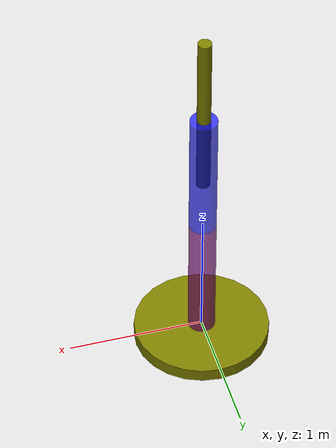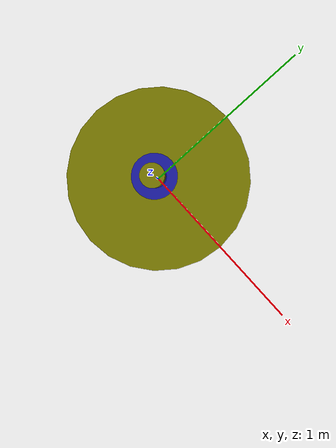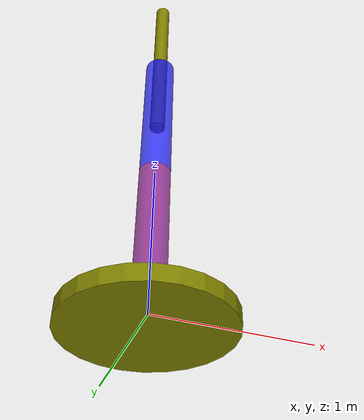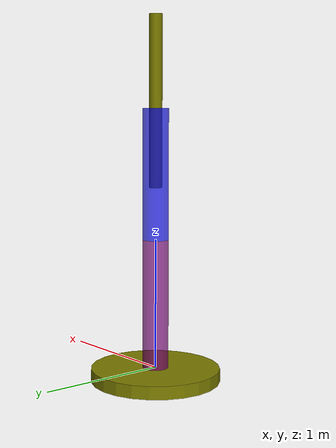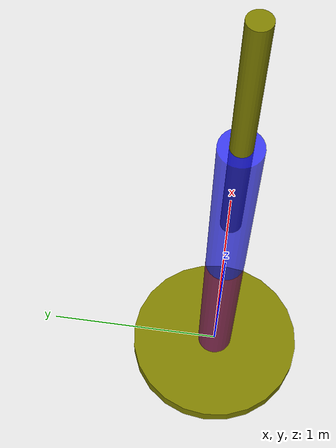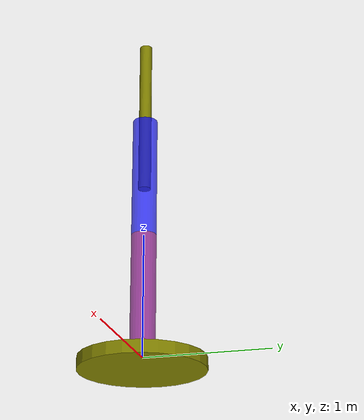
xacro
<?xml version = "1.0"?>
<robot name = "arm" xmlns:xacro="https://www.ros.org/wiki/xacro">
<xacro:include filename = "$(find p1)/xacro/variables.xacro"/>
<link name = "base">
    <visual>
        <geometry>
            <cylinder radius = "${base_R}" length = "${base_L}" />
        </geometry>
        <origin xyz = "0 0 ${-base_L /2}"/>
        <material name = "c1">
            <color rgba = "0.5 0.5 0 1"/>
        </material>
    </visual>
</link>

<link name = "link1">
    <visual>
        <geometry>
            <cylinder radius = "${R1}" length = "${L1}"/>
        </geometry>
        <origin xyz = " 0 ${L1 /2} 0" rpy = "1.57 0 0"/>
        <material name = "c2">
            <color rgba = "0.5 0.0 0.5 0.7"/>
        </material>
    </visual>
</link>

<joint name = "j1" type = "revolute">
    <parent link = "base"/>
    <child link = "link1"/>
    <origin xyz = "0 0 0" rpy = "1.57 0 0"/>
    <limit effort = "100" velocity = "1" upper = "1.57" lower = "-1.57" />
    <axis xyz = "0 0 1"/>
</joint>

<link name = "link2" >
    <visual>
        <geometry>
            <cylinder radius = "${R2}" length = "${L2}"/>
        </geometry>
    <origin xyz = "0 ${L2 /2} 0 " rpy = "1.57 0 0"/>
    <material name = "c3">
        <color rgba = "0 0 1 0.7"/>
</material>
</visual>
</link>

<joint name = "j2" type = "revolute">
    <parent link = "link1"/>
    <child link = "link2" />
    <origin xyz = "0 ${L1} 0" rpy = "0 0 0"/>
    <limit effort = "100" velocity = "1" upper = "1.57" lower = "-1.57"/>
    <axis xyz = "0 0 1"/>
</joint>

<link name = "link3">
    <visual>
        <geometry>
            <cylinder radius = "${R3}" length = "${L3}"/>
        </geometry>
    <origin xyz = "0 0 0" rpy = "0 0 0"/>
    <material name = "c4">
        <color rgba = "0.5 0.5 0 1"/>
    </material>
    </visual>
</link>
<joint name = "j3" type = "prismatic">
    <parent link = "link2"/>
    <child link = "link3"/>
    <origin xyz = "0 ${L2/2} 0" rpy = "-1.57 0 0"/>
    <limit effort = "200" velocity = "50" upper = "0.4" lower = "0.7"/>
    <axis xyz = "0 0 1"/>
</joint>

</robot>

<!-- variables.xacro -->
<robot name = "arm" xmlns:xacro="https://www.ros.org/wiki/xacro">
<xacro:property name = "base_L" value = "0.1"/>
<xacro:property name = "base_R" value = "0.5"/>

<xacro:property name = "L1" value = "1"/>
<xacro:property name = "R1" value = "0.1"/>

<xacro:property name = "L2" value = "1"/>
<xacro:property name = "R2" value = "0.1"/>

<xacro:property name = "L3" value = "1.3"/>
<xacro:property name = "R3" value = "0.05"/>

</robot>
